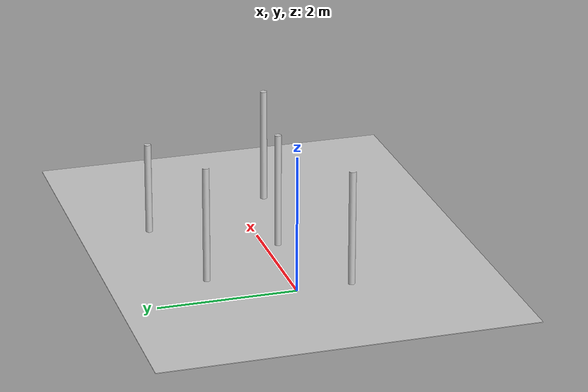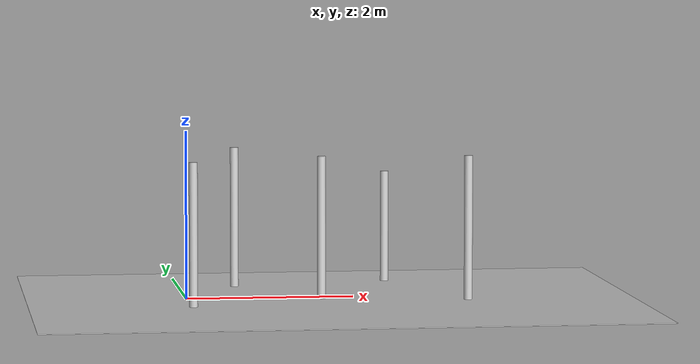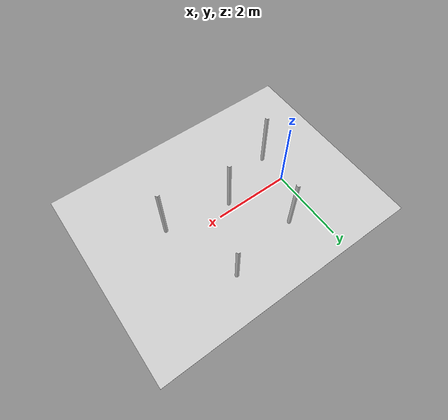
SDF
<?xml version="1.0" ?>
<sdf version="1.9">
  <model name="world_simple">
    <static>true</static>
    <link name="link">
      <collision name="collision">
        <geometry>
          <mesh>
            <uri>model://world_simple/meshes/world_simple.stl</uri>
          </mesh>
        </geometry>
      </collision>
      <visual name="visual">
        <geometry>
          <mesh>
            <uri>model://world_simple/meshes/world_simple.stl</uri>
          </mesh>
        </geometry>
        <material>
            <ambient>0.8 0.8 0.8 1</ambient>
            <diffuse>0.8 0.8 0.8 1</diffuse>
            <specular>0.8 0.8 0.8 1</specular>
        </material>
      </visual>
    </link>
  </model>
</sdf>
